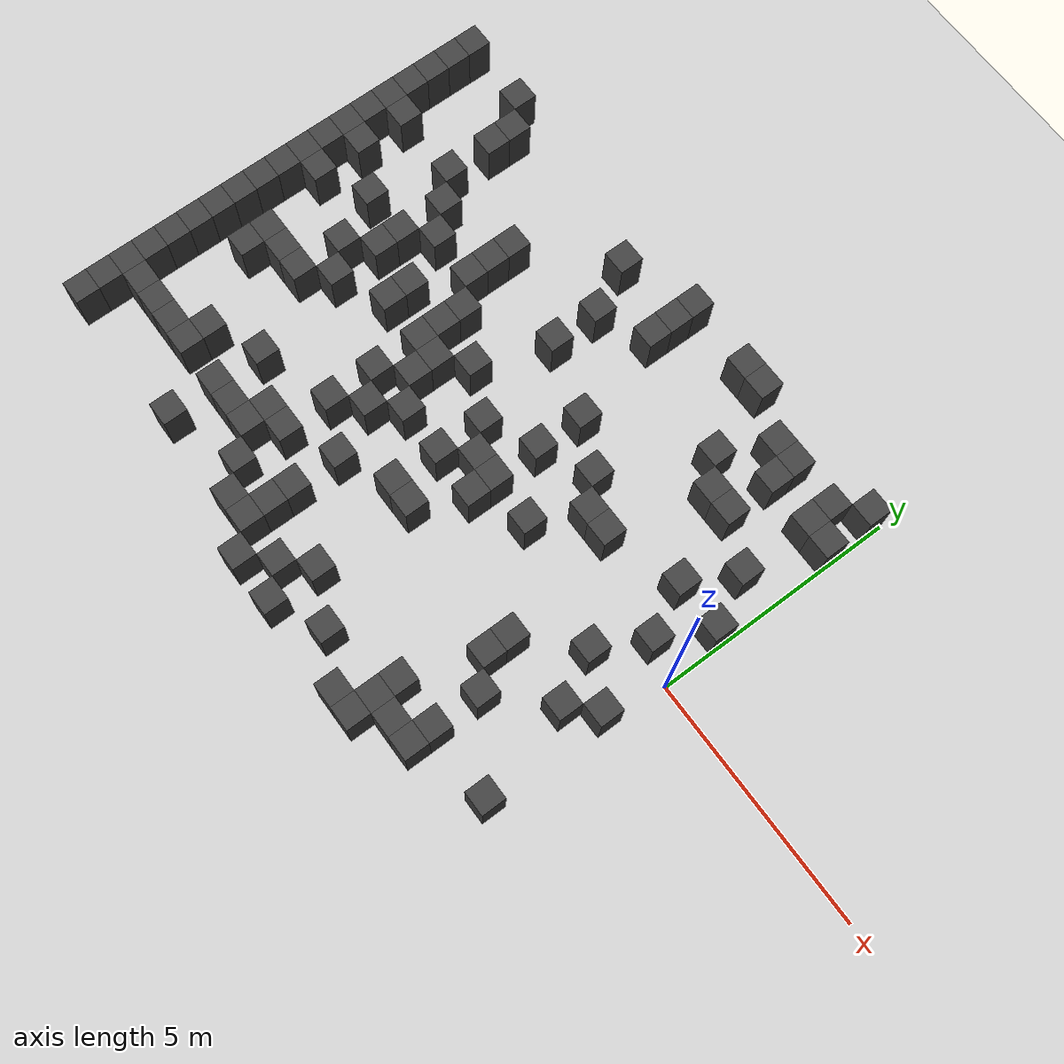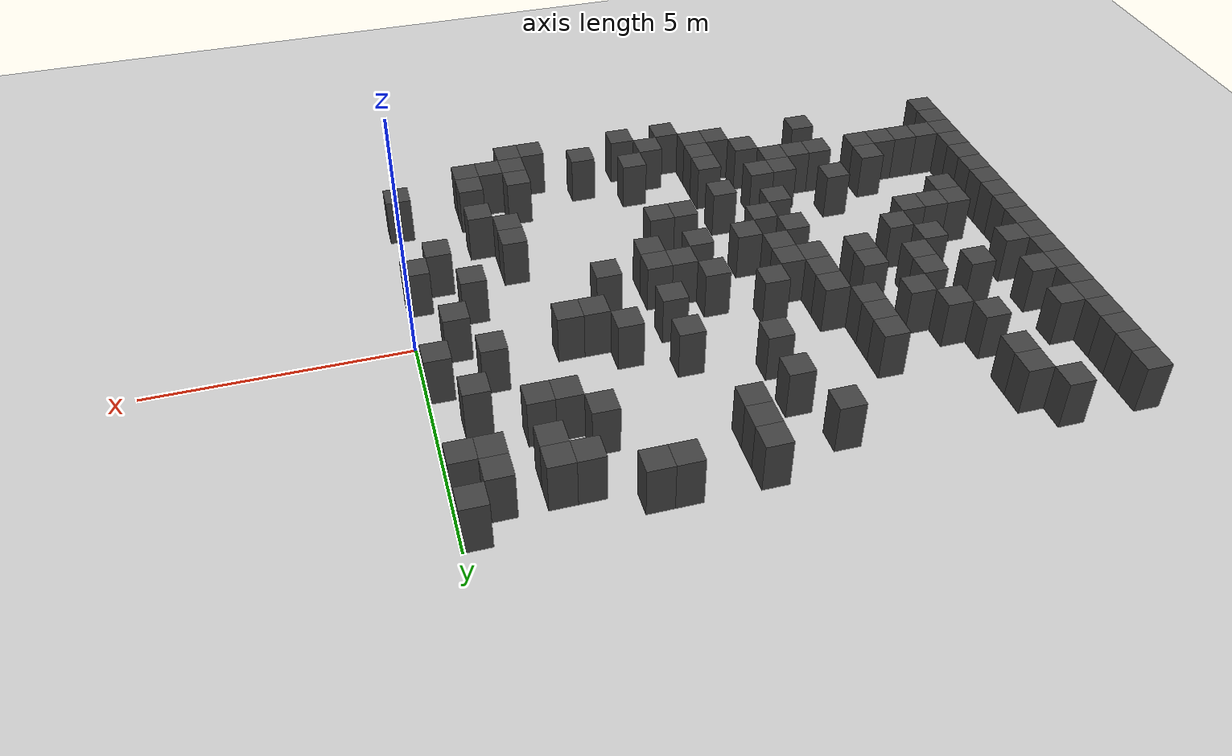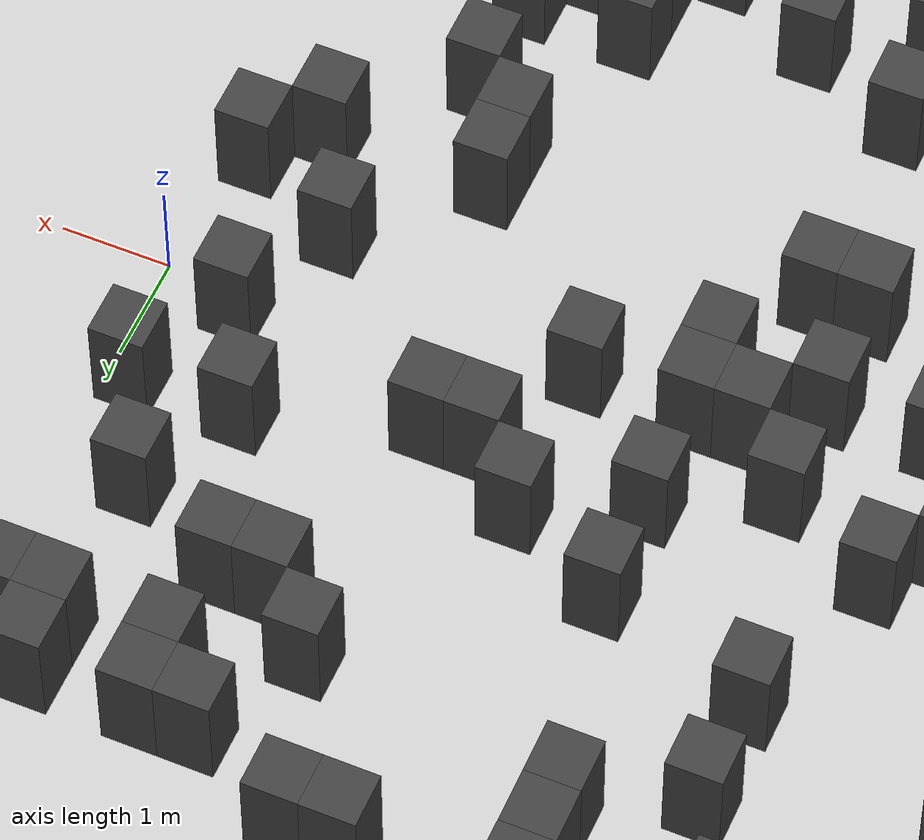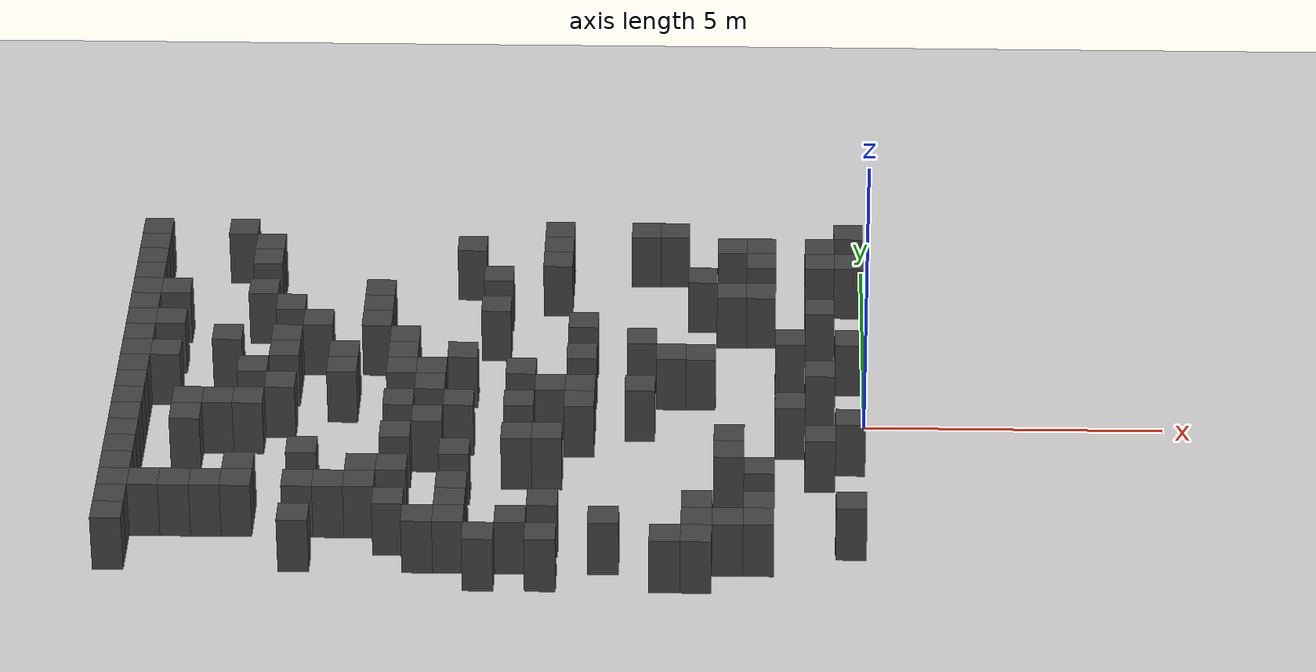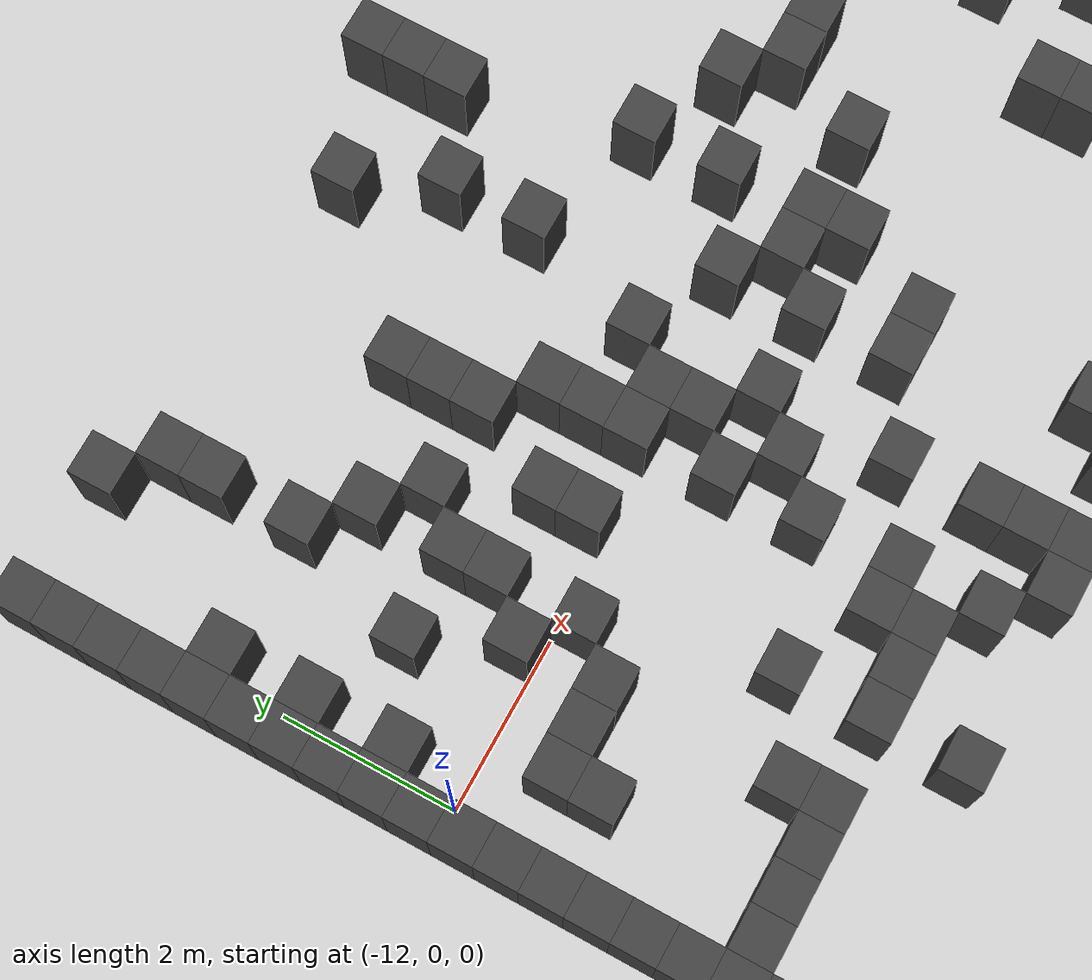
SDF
<sdf version="1.7">
 <world name="map_4951">
  <model name="ground_plane">
   <static>true</static>
   <link name="link">
    <collision name="collision">
     <geometry><plane><normal>0 0 1</normal><size>200 200</size></plane></geometry>
    </collision>
    <visual name="visual">
     <geometry><plane><normal>0 0 1</normal><size>200 200</size></plane></geometry>
     <material><ambient>0.8 0.8 0.8 1</ambient><diffuse>0.8 0.8 0.8 1</diffuse></material>
    </visual>
   </link>
  </model>
  <model name="maze_environment">
   <static>true</static>
   <link name="wall_233">
    <pose>-12.250 4.750 0.500 0 0 0</pose>
    <collision name="col"><geometry><box><size>0.5 0.5 1.0</size></box></geometry></collision>
    <visual name="vis">
     <geometry><box><size>0.5 0.5 1.0</size></box></geometry>
     <material><ambient>0.15 0.15 0.15 1</ambient><diffuse>0.25 0.25 0.25 1</diffuse></material>
    </visual>
   </link>
   <link name="wall_234">
    <pose>-10.750 4.750 0.500 0 0 0</pose>
    <collision name="col"><geometry><box><size>0.5 0.5 1.0</size></box></geometry></collision>
    <visual name="vis">
     <geometry><box><size>0.5 0.5 1.0</size></box></geometry>
     <material><ambient>0.15 0.15 0.15 1</ambient><diffuse>0.25 0.25 0.25 1</diffuse></material>
    </visual>
   </link>
   <link name="wall_235">
    <pose>-5.250 4.750 0.500 0 0 0</pose>
    <collision name="col"><geometry><box><size>0.5 0.5 1.0</size></box></geometry></collision>
    <visual name="vis">
     <geometry><box><size>0.5 0.5 1.0</size></box></geometry>
     <material><ambient>0.15 0.15 0.15 1</ambient><diffuse>0.25 0.25 0.25 1</diffuse></material>
    </visual>
   </link>
   <link name="wall_236">
    <pose>-3.750 4.750 0.500 0 0 0</pose>
    <collision name="col"><geometry><box><size>0.5 0.5 1.0</size></box></geometry></collision>
    <visual name="vis">
     <geometry><box><size>0.5 0.5 1.0</size></box></geometry>
     <material><ambient>0.15 0.15 0.15 1</ambient><diffuse>0.25 0.25 0.25 1</diffuse></material>
    </visual>
   </link>
   <link name="wall_237">
    <pose>-3.250 4.750 0.500 0 0 0</pose>
    <collision name="col"><geometry><box><size>0.5 0.5 1.0</size></box></geometry></collision>
    <visual name="vis">
     <geometry><box><size>0.5 0.5 1.0</size></box></geometry>
     <material><ambient>0.15 0.15 0.15 1</ambient><diffuse>0.25 0.25 0.25 1</diffuse></material>
    </visual>
   </link>
   <link name="wall_238">
    <pose>-0.250 4.750 0.500 0 0 0</pose>
    <collision name="col"><geometry><box><size>0.5 0.5 1.0</size></box></geometry></collision>
    <visual name="vis">
     <geometry><box><size>0.5 0.5 1.0</size></box></geometry>
     <material><ambient>0.15 0.15 0.15 1</ambient><diffuse>0.25 0.25 0.25 1</diffuse></material>
    </visual>
   </link>
   <link name="wall_241">
    <pose>-12.250 4.250 0.500 0 0 0</pose>
    <collision name="col"><geometry><box><size>0.5 0.5 1.0</size></box></geometry></collision>
    <visual name="vis">
     <geometry><box><size>0.5 0.5 1.0</size></box></geometry>
     <material><ambient>0.15 0.15 0.15 1</ambient><diffuse>0.25 0.25 0.25 1</diffuse></material>
    </visual>
   </link>
   <link name="wall_242">
    <pose>-10.250 4.250 0.500 0 0 0</pose>
    <collision name="col"><geometry><box><size>0.5 0.5 1.0</size></box></geometry></collision>
    <visual name="vis">
     <geometry><box><size>0.5 0.5 1.0</size></box></geometry>
     <material><ambient>0.15 0.15 0.15 1</ambient><diffuse>0.25 0.25 0.25 1</diffuse></material>
    </visual>
   </link>
   <link name="wall_243">
    <pose>-6.750 4.250 0.500 0 0 0</pose>
    <collision name="col"><geometry><box><size>0.5 0.5 1.0</size></box></geometry></collision>
    <visual name="vis">
     <geometry><box><size>0.5 0.5 1.0</size></box></geometry>
     <material><ambient>0.15 0.15 0.15 1</ambient><diffuse>0.25 0.25 0.25 1</diffuse></material>
    </visual>
   </link>
   <link name="wall_244">
    <pose>-5.250 4.250 0.500 0 0 0</pose>
    <collision name="col"><geometry><box><size>0.5 0.5 1.0</size></box></geometry></collision>
    <visual name="vis">
     <geometry><box><size>0.5 0.5 1.0</size></box></geometry>
     <material><ambient>0.15 0.15 0.15 1</ambient><diffuse>0.25 0.25 0.25 1</diffuse></material>
    </visual>
   </link>
   <link name="wall_245">
    <pose>-2.250 4.250 0.500 0 0 0</pose>
    <collision name="col"><geometry><box><size>0.5 0.5 1.0</size></box></geometry></collision>
    <visual name="vis">
     <geometry><box><size>0.5 0.5 1.0</size></box></geometry>
     <material><ambient>0.15 0.15 0.15 1</ambient><diffuse>0.25 0.25 0.25 1</diffuse></material>
    </visual>
   </link>
   <link name="wall_246">
    <pose>-1.750 4.250 0.500 0 0 0</pose>
    <collision name="col"><geometry><box><size>0.5 0.5 1.0</size></box></geometry></collision>
    <visual name="vis">
     <geometry><box><size>0.5 0.5 1.0</size></box></geometry>
     <material><ambient>0.15 0.15 0.15 1</ambient><diffuse>0.25 0.25 0.25 1</diffuse></material>
    </visual>
   </link>
   <link name="wall_247">
    <pose>-0.750 4.250 0.500 0 0 0</pose>
    <collision name="col"><geometry><box><size>0.5 0.5 1.0</size></box></geometry></collision>
    <visual name="vis">
     <geometry><box><size>0.5 0.5 1.0</size></box></geometry>
     <material><ambient>0.15 0.15 0.15 1</ambient><diffuse>0.25 0.25 0.25 1</diffuse></material>
    </visual>
   </link>
   <link name="wall_255">
    <pose>-12.250 3.750 0.500 0 0 0</pose>
    <collision name="col"><geometry><box><size>0.5 0.5 1.0</size></box></geometry></collision>
    <visual name="vis">
     <geometry><box><size>0.5 0.5 1.0</size></box></geometry>
     <material><ambient>0.15 0.15 0.15 1</ambient><diffuse>0.25 0.25 0.25 1</diffuse></material>
    </visual>
   </link>
   <link name="wall_256">
    <pose>-10.250 3.750 0.500 0 0 0</pose>
    <collision name="col"><geometry><box><size>0.5 0.5 1.0</size></box></geometry></collision>
    <visual name="vis">
     <geometry><box><size>0.5 0.5 1.0</size></box></geometry>
     <material><ambient>0.15 0.15 0.15 1</ambient><diffuse>0.25 0.25 0.25 1</diffuse></material>
    </visual>
   </link>
   <link name="wall_257">
    <pose>-5.250 3.750 0.500 0 0 0</pose>
    <collision name="col"><geometry><box><size>0.5 0.5 1.0</size></box></geometry></collision>
    <visual name="vis">
     <geometry><box><size>0.5 0.5 1.0</size></box></geometry>
     <material><ambient>0.15 0.15 0.15 1</ambient><diffuse>0.25 0.25 0.25 1</diffuse></material>
    </visual>
   </link>
   <link name="wall_258">
    <pose>-1.750 3.750 0.500 0 0 0</pose>
    <collision name="col"><geometry><box><size>0.5 0.5 1.0</size></box></geometry></collision>
    <visual name="vis">
     <geometry><box><size>0.5 0.5 1.0</size></box></geometry>
     <material><ambient>0.15 0.15 0.15 1</ambient><diffuse>0.25 0.25 0.25 1</diffuse></material>
    </visual>
   </link>
   <link name="wall_259">
    <pose>-0.750 3.750 0.500 0 0 0</pose>
    <collision name="col"><geometry><box><size>0.5 0.5 1.0</size></box></geometry></collision>
    <visual name="vis">
     <geometry><box><size>0.5 0.5 1.0</size></box></geometry>
     <material><ambient>0.15 0.15 0.15 1</ambient><diffuse>0.25 0.25 0.25 1</diffuse></material>
    </visual>
   </link>
   <link name="wall_260">
    <pose>-0.250 3.750 0.500 0 0 0</pose>
    <collision name="col"><geometry><box><size>0.5 0.5 1.0</size></box></geometry></collision>
    <visual name="vis">
     <geometry><box><size>0.5 0.5 1.0</size></box></geometry>
     <material><ambient>0.15 0.15 0.15 1</ambient><diffuse>0.25 0.25 0.25 1</diffuse></material>
    </visual>
   </link>
   <link name="wall_272">
    <pose>-12.250 3.250 0.500 0 0 0</pose>
    <collision name="col"><geometry><box><size>0.5 0.5 1.0</size></box></geometry></collision>
    <visual name="vis">
     <geometry><box><size>0.5 0.5 1.0</size></box></geometry>
     <material><ambient>0.15 0.15 0.15 1</ambient><diffuse>0.25 0.25 0.25 1</diffuse></material>
    </visual>
   </link>
   <link name="wall_273">
    <pose>-6.250 3.250 0.500 0 0 0</pose>
    <collision name="col"><geometry><box><size>0.5 0.5 1.0</size></box></geometry></collision>
    <visual name="vis">
     <geometry><box><size>0.5 0.5 1.0</size></box></geometry>
     <material><ambient>0.15 0.15 0.15 1</ambient><diffuse>0.25 0.25 0.25 1</diffuse></material>
    </visual>
   </link>
   <link name="wall_274">
    <pose>-2.750 3.250 0.500 0 0 0</pose>
    <collision name="col"><geometry><box><size>0.5 0.5 1.0</size></box></geometry></collision>
    <visual name="vis">
     <geometry><box><size>0.5 0.5 1.0</size></box></geometry>
     <material><ambient>0.15 0.15 0.15 1</ambient><diffuse>0.25 0.25 0.25 1</diffuse></material>
    </visual>
   </link>
   <link name="wall_281">
    <pose>-12.250 2.750 0.500 0 0 0</pose>
    <collision name="col"><geometry><box><size>0.5 0.5 1.0</size></box></geometry></collision>
    <visual name="vis">
     <geometry><box><size>0.5 0.5 1.0</size></box></geometry>
     <material><ambient>0.15 0.15 0.15 1</ambient><diffuse>0.25 0.25 0.25 1</diffuse></material>
    </visual>
   </link>
   <link name="wall_282">
    <pose>-11.750 2.750 0.500 0 0 0</pose>
    <collision name="col"><geometry><box><size>0.5 0.5 1.0</size></box></geometry></collision>
    <visual name="vis">
     <geometry><box><size>0.5 0.5 1.0</size></box></geometry>
     <material><ambient>0.15 0.15 0.15 1</ambient><diffuse>0.25 0.25 0.25 1</diffuse></material>
    </visual>
   </link>
   <link name="wall_283">
    <pose>-10.250 2.750 0.500 0 0 0</pose>
    <collision name="col"><geometry><box><size>0.5 0.5 1.0</size></box></geometry></collision>
    <visual name="vis">
     <geometry><box><size>0.5 0.5 1.0</size></box></geometry>
     <material><ambient>0.15 0.15 0.15 1</ambient><diffuse>0.25 0.25 0.25 1</diffuse></material>
    </visual>
   </link>
   <link name="wall_284">
    <pose>-8.250 2.750 0.500 0 0 0</pose>
    <collision name="col"><geometry><box><size>0.5 0.5 1.0</size></box></geometry></collision>
    <visual name="vis">
     <geometry><box><size>0.5 0.5 1.0</size></box></geometry>
     <material><ambient>0.15 0.15 0.15 1</ambient><diffuse>0.25 0.25 0.25 1</diffuse></material>
    </visual>
   </link>
   <link name="wall_285">
    <pose>-2.250 2.750 0.500 0 0 0</pose>
    <collision name="col"><geometry><box><size>0.5 0.5 1.0</size></box></geometry></collision>
    <visual name="vis">
     <geometry><box><size>0.5 0.5 1.0</size></box></geometry>
     <material><ambient>0.15 0.15 0.15 1</ambient><diffuse>0.25 0.25 0.25 1</diffuse></material>
    </visual>
   </link>
   <link name="wall_286">
    <pose>-1.750 2.750 0.500 0 0 0</pose>
    <collision name="col"><geometry><box><size>0.5 0.5 1.0</size></box></geometry></collision>
    <visual name="vis">
     <geometry><box><size>0.5 0.5 1.0</size></box></geometry>
     <material><ambient>0.15 0.15 0.15 1</ambient><diffuse>0.25 0.25 0.25 1</diffuse></material>
    </visual>
   </link>
   <link name="wall_295">
    <pose>-12.250 2.250 0.500 0 0 0</pose>
    <collision name="col"><geometry><box><size>0.5 0.5 1.0</size></box></geometry></collision>
    <visual name="vis">
     <geometry><box><size>0.5 0.5 1.0</size></box></geometry>
     <material><ambient>0.15 0.15 0.15 1</ambient><diffuse>0.25 0.25 0.25 1</diffuse></material>
    </visual>
   </link>
   <link name="wall_296">
    <pose>-9.750 2.250 0.500 0 0 0</pose>
    <collision name="col"><geometry><box><size>0.5 0.5 1.0</size></box></geometry></collision>
    <visual name="vis">
     <geometry><box><size>0.5 0.5 1.0</size></box></geometry>
     <material><ambient>0.15 0.15 0.15 1</ambient><diffuse>0.25 0.25 0.25 1</diffuse></material>
    </visual>
   </link>
   <link name="wall_297">
    <pose>-8.250 2.250 0.500 0 0 0</pose>
    <collision name="col"><geometry><box><size>0.5 0.5 1.0</size></box></geometry></collision>
    <visual name="vis">
     <geometry><box><size>0.5 0.5 1.0</size></box></geometry>
     <material><ambient>0.15 0.15 0.15 1</ambient><diffuse>0.25 0.25 0.25 1</diffuse></material>
    </visual>
   </link>
   <link name="wall_298">
    <pose>-6.250 2.250 0.500 0 0 0</pose>
    <collision name="col"><geometry><box><size>0.5 0.5 1.0</size></box></geometry></collision>
    <visual name="vis">
     <geometry><box><size>0.5 0.5 1.0</size></box></geometry>
     <material><ambient>0.15 0.15 0.15 1</ambient><diffuse>0.25 0.25 0.25 1</diffuse></material>
    </visual>
   </link>
   <link name="wall_299">
    <pose>-0.750 2.250 0.500 0 0 0</pose>
    <collision name="col"><geometry><box><size>0.5 0.5 1.0</size></box></geometry></collision>
    <visual name="vis">
     <geometry><box><size>0.5 0.5 1.0</size></box></geometry>
     <material><ambient>0.15 0.15 0.15 1</ambient><diffuse>0.25 0.25 0.25 1</diffuse></material>
    </visual>
   </link>
   <link name="wall_307">
    <pose>-12.250 1.750 0.500 0 0 0</pose>
    <collision name="col"><geometry><box><size>0.5 0.5 1.0</size></box></geometry></collision>
    <visual name="vis">
     <geometry><box><size>0.5 0.5 1.0</size></box></geometry>
     <material><ambient>0.15 0.15 0.15 1</ambient><diffuse>0.25 0.25 0.25 1</diffuse></material>
    </visual>
   </link>
   <link name="wall_308">
    <pose>-11.750 1.750 0.500 0 0 0</pose>
    <collision name="col"><geometry><box><size>0.5 0.5 1.0</size></box></geometry></collision>
    <visual name="vis">
     <geometry><box><size>0.5 0.5 1.0</size></box></geometry>
     <material><ambient>0.15 0.15 0.15 1</ambient><diffuse>0.25 0.25 0.25 1</diffuse></material>
    </visual>
   </link>
   <link name="wall_309">
    <pose>-9.250 1.750 0.500 0 0 0</pose>
    <collision name="col"><geometry><box><size>0.5 0.5 1.0</size></box></geometry></collision>
    <visual name="vis">
     <geometry><box><size>0.5 0.5 1.0</size></box></geometry>
     <material><ambient>0.15 0.15 0.15 1</ambient><diffuse>0.25 0.25 0.25 1</diffuse></material>
    </visual>
   </link>
   <link name="wall_310">
    <pose>-8.250 1.750 0.500 0 0 0</pose>
    <collision name="col"><geometry><box><size>0.5 0.5 1.0</size></box></geometry></collision>
    <visual name="vis">
     <geometry><box><size>0.5 0.5 1.0</size></box></geometry>
     <material><ambient>0.15 0.15 0.15 1</ambient><diffuse>0.25 0.25 0.25 1</diffuse></material>
    </visual>
   </link>
   <link name="wall_311">
    <pose>-4.750 1.750 0.500 0 0 0</pose>
    <collision name="col"><geometry><box><size>0.5 0.5 1.0</size></box></geometry></collision>
    <visual name="vis">
     <geometry><box><size>0.5 0.5 1.0</size></box></geometry>
     <material><ambient>0.15 0.15 0.15 1</ambient><diffuse>0.25 0.25 0.25 1</diffuse></material>
    </visual>
   </link>
   <link name="wall_319">
    <pose>-12.250 1.250 0.500 0 0 0</pose>
    <collision name="col"><geometry><box><size>0.5 0.5 1.0</size></box></geometry></collision>
    <visual name="vis">
     <geometry><box><size>0.5 0.5 1.0</size></box></geometry>
     <material><ambient>0.15 0.15 0.15 1</ambient><diffuse>0.25 0.25 0.25 1</diffuse></material>
    </visual>
   </link>
   <link name="wall_320">
    <pose>-10.750 1.250 0.500 0 0 0</pose>
    <collision name="col"><geometry><box><size>0.5 0.5 1.0</size></box></geometry></collision>
    <visual name="vis">
     <geometry><box><size>0.5 0.5 1.0</size></box></geometry>
     <material><ambient>0.15 0.15 0.15 1</ambient><diffuse>0.25 0.25 0.25 1</diffuse></material>
    </visual>
   </link>
   <link name="wall_321">
    <pose>-9.750 1.250 0.500 0 0 0</pose>
    <collision name="col"><geometry><box><size>0.5 0.5 1.0</size></box></geometry></collision>
    <visual name="vis">
     <geometry><box><size>0.5 0.5 1.0</size></box></geometry>
     <material><ambient>0.15 0.15 0.15 1</ambient><diffuse>0.25 0.25 0.25 1</diffuse></material>
    </visual>
   </link>
   <link name="wall_322">
    <pose>-7.750 1.250 0.500 0 0 0</pose>
    <collision name="col"><geometry><box><size>0.5 0.5 1.0</size></box></geometry></collision>
    <visual name="vis">
     <geometry><box><size>0.5 0.5 1.0</size></box></geometry>
     <material><ambient>0.15 0.15 0.15 1</ambient><diffuse>0.25 0.25 0.25 1</diffuse></material>
    </visual>
   </link>
   <link name="wall_323">
    <pose>-3.750 1.250 0.500 0 0 0</pose>
    <collision name="col"><geometry><box><size>0.5 0.5 1.0</size></box></geometry></collision>
    <visual name="vis">
     <geometry><box><size>0.5 0.5 1.0</size></box></geometry>
     <material><ambient>0.15 0.15 0.15 1</ambient><diffuse>0.25 0.25 0.25 1</diffuse></material>
    </visual>
   </link>
   <link name="wall_324">
    <pose>-1.250 1.250 0.500 0 0 0</pose>
    <collision name="col"><geometry><box><size>0.5 0.5 1.0</size></box></geometry></collision>
    <visual name="vis">
     <geometry><box><size>0.5 0.5 1.0</size></box></geometry>
     <material><ambient>0.15 0.15 0.15 1</ambient><diffuse>0.25 0.25 0.25 1</diffuse></material>
    </visual>
   </link>
   <link name="wall_325">
    <pose>-0.250 1.250 0.500 0 0 0</pose>
    <collision name="col"><geometry><box><size>0.5 0.5 1.0</size></box></geometry></collision>
    <visual name="vis">
     <geometry><box><size>0.5 0.5 1.0</size></box></geometry>
     <material><ambient>0.15 0.15 0.15 1</ambient><diffuse>0.25 0.25 0.25 1</diffuse></material>
    </visual>
   </link>
   <link name="wall_334">
    <pose>-12.250 0.750 0.500 0 0 0</pose>
    <collision name="col"><geometry><box><size>0.5 0.5 1.0</size></box></geometry></collision>
    <visual name="vis">
     <geometry><box><size>0.5 0.5 1.0</size></box></geometry>
     <material><ambient>0.15 0.15 0.15 1</ambient><diffuse>0.25 0.25 0.25 1</diffuse></material>
    </visual>
   </link>
   <link name="wall_335">
    <pose>-11.750 0.750 0.500 0 0 0</pose>
    <collision name="col"><geometry><box><size>0.5 0.5 1.0</size></box></geometry></collision>
    <visual name="vis">
     <geometry><box><size>0.5 0.5 1.0</size></box></geometry>
     <material><ambient>0.15 0.15 0.15 1</ambient><diffuse>0.25 0.25 0.25 1</diffuse></material>
    </visual>
   </link>
   <link name="wall_336">
    <pose>-9.750 0.750 0.500 0 0 0</pose>
    <collision name="col"><geometry><box><size>0.5 0.5 1.0</size></box></geometry></collision>
    <visual name="vis">
     <geometry><box><size>0.5 0.5 1.0</size></box></geometry>
     <material><ambient>0.15 0.15 0.15 1</ambient><diffuse>0.25 0.25 0.25 1</diffuse></material>
    </visual>
   </link>
   <link name="wall_337">
    <pose>-8.750 0.750 0.500 0 0 0</pose>
    <collision name="col"><geometry><box><size>0.5 0.5 1.0</size></box></geometry></collision>
    <visual name="vis">
     <geometry><box><size>0.5 0.5 1.0</size></box></geometry>
     <material><ambient>0.15 0.15 0.15 1</ambient><diffuse>0.25 0.25 0.25 1</diffuse></material>
    </visual>
   </link>
   <link name="wall_338">
    <pose>-7.750 0.750 0.500 0 0 0</pose>
    <collision name="col"><geometry><box><size>0.5 0.5 1.0</size></box></geometry></collision>
    <visual name="vis">
     <geometry><box><size>0.5 0.5 1.0</size></box></geometry>
     <material><ambient>0.15 0.15 0.15 1</ambient><diffuse>0.25 0.25 0.25 1</diffuse></material>
    </visual>
   </link>
   <link name="wall_339">
    <pose>-6.750 0.750 0.500 0 0 0</pose>
    <collision name="col"><geometry><box><size>0.5 0.5 1.0</size></box></geometry></collision>
    <visual name="vis">
     <geometry><box><size>0.5 0.5 1.0</size></box></geometry>
     <material><ambient>0.15 0.15 0.15 1</ambient><diffuse>0.25 0.25 0.25 1</diffuse></material>
    </visual>
   </link>
   <link name="wall_340">
    <pose>-4.750 0.750 0.500 0 0 0</pose>
    <collision name="col"><geometry><box><size>0.5 0.5 1.0</size></box></geometry></collision>
    <visual name="vis">
     <geometry><box><size>0.5 0.5 1.0</size></box></geometry>
     <material><ambient>0.15 0.15 0.15 1</ambient><diffuse>0.25 0.25 0.25 1</diffuse></material>
    </visual>
   </link>
   <link name="wall_341">
    <pose>-3.250 0.750 0.500 0 0 0</pose>
    <collision name="col"><geometry><box><size>0.5 0.5 1.0</size></box></geometry></collision>
    <visual name="vis">
     <geometry><box><size>0.5 0.5 1.0</size></box></geometry>
     <material><ambient>0.15 0.15 0.15 1</ambient><diffuse>0.25 0.25 0.25 1</diffuse></material>
    </visual>
   </link>
   <link name="wall_342">
    <pose>-2.750 0.750 0.500 0 0 0</pose>
    <collision name="col"><geometry><box><size>0.5 0.5 1.0</size></box></geometry></collision>
    <visual name="vis">
     <geometry><box><size>0.5 0.5 1.0</size></box></geometry>
     <material><ambient>0.15 0.15 0.15 1</ambient><diffuse>0.25 0.25 0.25 1</diffuse></material>
    </visual>
   </link>
   <link name="wall_353">
    <pose>-12.250 0.250 0.500 0 0 0</pose>
    <collision name="col"><geometry><box><size>0.5 0.5 1.0</size></box></geometry></collision>
    <visual name="vis">
     <geometry><box><size>0.5 0.5 1.0</size></box></geometry>
     <material><ambient>0.15 0.15 0.15 1</ambient><diffuse>0.25 0.25 0.25 1</diffuse></material>
    </visual>
   </link>
   <link name="wall_354">
    <pose>-10.250 0.250 0.500 0 0 0</pose>
    <collision name="col"><geometry><box><size>0.5 0.5 1.0</size></box></geometry></collision>
    <visual name="vis">
     <geometry><box><size>0.5 0.5 1.0</size></box></geometry>
     <material><ambient>0.15 0.15 0.15 1</ambient><diffuse>0.25 0.25 0.25 1</diffuse></material>
    </visual>
   </link>
   <link name="wall_355">
    <pose>-8.750 0.250 0.500 0 0 0</pose>
    <collision name="col"><geometry><box><size>0.5 0.5 1.0</size></box></geometry></collision>
    <visual name="vis">
     <geometry><box><size>0.5 0.5 1.0</size></box></geometry>
     <material><ambient>0.15 0.15 0.15 1</ambient><diffuse>0.25 0.25 0.25 1</diffuse></material>
    </visual>
   </link>
   <link name="wall_356">
    <pose>-7.750 0.250 0.500 0 0 0</pose>
    <collision name="col"><geometry><box><size>0.5 0.5 1.0</size></box></geometry></collision>
    <visual name="vis">
     <geometry><box><size>0.5 0.5 1.0</size></box></geometry>
     <material><ambient>0.15 0.15 0.15 1</ambient><diffuse>0.25 0.25 0.25 1</diffuse></material>
    </visual>
   </link>
   <link name="wall_357">
    <pose>-7.250 0.250 0.500 0 0 0</pose>
    <collision name="col"><geometry><box><size>0.5 0.5 1.0</size></box></geometry></collision>
    <visual name="vis">
     <geometry><box><size>0.5 0.5 1.0</size></box></geometry>
     <material><ambient>0.15 0.15 0.15 1</ambient><diffuse>0.25 0.25 0.25 1</diffuse></material>
    </visual>
   </link>
   <link name="wall_358">
    <pose>-5.750 0.250 0.500 0 0 0</pose>
    <collision name="col"><geometry><box><size>0.5 0.5 1.0</size></box></geometry></collision>
    <visual name="vis">
     <geometry><box><size>0.5 0.5 1.0</size></box></geometry>
     <material><ambient>0.15 0.15 0.15 1</ambient><diffuse>0.25 0.25 0.25 1</diffuse></material>
    </visual>
   </link>
   <link name="wall_359">
    <pose>-0.750 0.250 0.500 0 0 0</pose>
    <collision name="col"><geometry><box><size>0.5 0.5 1.0</size></box></geometry></collision>
    <visual name="vis">
     <geometry><box><size>0.5 0.5 1.0</size></box></geometry>
     <material><ambient>0.15 0.15 0.15 1</ambient><diffuse>0.25 0.25 0.25 1</diffuse></material>
    </visual>
   </link>
   <link name="wall_364">
    <pose>-12.250 -0.250 0.500 0 0 0</pose>
    <collision name="col"><geometry><box><size>0.5 0.5 1.0</size></box></geometry></collision>
    <visual name="vis">
     <geometry><box><size>0.5 0.5 1.0</size></box></geometry>
     <material><ambient>0.15 0.15 0.15 1</ambient><diffuse>0.25 0.25 0.25 1</diffuse></material>
    </visual>
   </link>
   <link name="wall_365">
    <pose>-9.750 -0.250 0.500 0 0 0</pose>
    <collision name="col"><geometry><box><size>0.5 0.5 1.0</size></box></geometry></collision>
    <visual name="vis">
     <geometry><box><size>0.5 0.5 1.0</size></box></geometry>
     <material><ambient>0.15 0.15 0.15 1</ambient><diffuse>0.25 0.25 0.25 1</diffuse></material>
    </visual>
   </link>
   <link name="wall_366">
    <pose>-7.250 -0.250 0.500 0 0 0</pose>
    <collision name="col"><geometry><box><size>0.5 0.5 1.0</size></box></geometry></collision>
    <visual name="vis">
     <geometry><box><size>0.5 0.5 1.0</size></box></geometry>
     <material><ambient>0.15 0.15 0.15 1</ambient><diffuse>0.25 0.25 0.25 1</diffuse></material>
    </visual>
   </link>
   <link name="wall_367">
    <pose>-5.250 -0.250 0.500 0 0 0</pose>
    <collision name="col"><geometry><box><size>0.5 0.5 1.0</size></box></geometry></collision>
    <visual name="vis">
     <geometry><box><size>0.5 0.5 1.0</size></box></geometry>
     <material><ambient>0.15 0.15 0.15 1</ambient><diffuse>0.25 0.25 0.25 1</diffuse></material>
    </visual>
   </link>
   <link name="wall_368">
    <pose>-4.750 -0.250 0.500 0 0 0</pose>
    <collision name="col"><geometry><box><size>0.5 0.5 1.0</size></box></geometry></collision>
    <visual name="vis">
     <geometry><box><size>0.5 0.5 1.0</size></box></geometry>
     <material><ambient>0.15 0.15 0.15 1</ambient><diffuse>0.25 0.25 0.25 1</diffuse></material>
    </visual>
   </link>
   <link name="wall_369">
    <pose>-3.750 -0.250 0.500 0 0 0</pose>
    <collision name="col"><geometry><box><size>0.5 0.5 1.0</size></box></geometry></collision>
    <visual name="vis">
     <geometry><box><size>0.5 0.5 1.0</size></box></geometry>
     <material><ambient>0.15 0.15 0.15 1</ambient><diffuse>0.25 0.25 0.25 1</diffuse></material>
    </visual>
   </link>
   <link name="wall_375">
    <pose>-12.250 -0.750 0.500 0 0 0</pose>
    <collision name="col"><geometry><box><size>0.5 0.5 1.0</size></box></geometry></collision>
    <visual name="vis">
     <geometry><box><size>0.5 0.5 1.0</size></box></geometry>
     <material><ambient>0.15 0.15 0.15 1</ambient><diffuse>0.25 0.25 0.25 1</diffuse></material>
    </visual>
   </link>
   <link name="wall_376">
    <pose>-11.250 -0.750 0.500 0 0 0</pose>
    <collision name="col"><geometry><box><size>0.5 0.5 1.0</size></box></geometry></collision>
    <visual name="vis">
     <geometry><box><size>0.5 0.5 1.0</size></box></geometry>
     <material><ambient>0.15 0.15 0.15 1</ambient><diffuse>0.25 0.25 0.25 1</diffuse></material>
    </visual>
   </link>
   <link name="wall_377">
    <pose>-10.750 -0.750 0.500 0 0 0</pose>
    <collision name="col"><geometry><box><size>0.5 0.5 1.0</size></box></geometry></collision>
    <visual name="vis">
     <geometry><box><size>0.5 0.5 1.0</size></box></geometry>
     <material><ambient>0.15 0.15 0.15 1</ambient><diffuse>0.25 0.25 0.25 1</diffuse></material>
    </visual>
   </link>
   <link name="wall_378">
    <pose>-10.250 -0.750 0.500 0 0 0</pose>
    <collision name="col"><geometry><box><size>0.5 0.5 1.0</size></box></geometry></collision>
    <visual name="vis">
     <geometry><box><size>0.5 0.5 1.0</size></box></geometry>
     <material><ambient>0.15 0.15 0.15 1</ambient><diffuse>0.25 0.25 0.25 1</diffuse></material>
    </visual>
   </link>
   <link name="wall_379">
    <pose>-7.750 -0.750 0.500 0 0 0</pose>
    <collision name="col"><geometry><box><size>0.5 0.5 1.0</size></box></geometry></collision>
    <visual name="vis">
     <geometry><box><size>0.5 0.5 1.0</size></box></geometry>
     <material><ambient>0.15 0.15 0.15 1</ambient><diffuse>0.25 0.25 0.25 1</diffuse></material>
    </visual>
   </link>
   <link name="wall_380">
    <pose>-6.750 -0.750 0.500 0 0 0</pose>
    <collision name="col"><geometry><box><size>0.5 0.5 1.0</size></box></geometry></collision>
    <visual name="vis">
     <geometry><box><size>0.5 0.5 1.0</size></box></geometry>
     <material><ambient>0.15 0.15 0.15 1</ambient><diffuse>0.25 0.25 0.25 1</diffuse></material>
    </visual>
   </link>
   <link name="wall_381">
    <pose>-5.750 -0.750 0.500 0 0 0</pose>
    <collision name="col"><geometry><box><size>0.5 0.5 1.0</size></box></geometry></collision>
    <visual name="vis">
     <geometry><box><size>0.5 0.5 1.0</size></box></geometry>
     <material><ambient>0.15 0.15 0.15 1</ambient><diffuse>0.25 0.25 0.25 1</diffuse></material>
    </visual>
   </link>
   <link name="wall_382">
    <pose>-4.750 -0.750 0.500 0 0 0</pose>
    <collision name="col"><geometry><box><size>0.5 0.5 1.0</size></box></geometry></collision>
    <visual name="vis">
     <geometry><box><size>0.5 0.5 1.0</size></box></geometry>
     <material><ambient>0.15 0.15 0.15 1</ambient><diffuse>0.25 0.25 0.25 1</diffuse></material>
    </visual>
   </link>
   <link name="wall_383">
    <pose>-1.250 -0.750 0.500 0 0 0</pose>
    <collision name="col"><geometry><box><size>0.5 0.5 1.0</size></box></geometry></collision>
    <visual name="vis">
     <geometry><box><size>0.5 0.5 1.0</size></box></geometry>
     <material><ambient>0.15 0.15 0.15 1</ambient><diffuse>0.25 0.25 0.25 1</diffuse></material>
    </visual>
   </link>
   <link name="wall_395">
    <pose>-12.250 -1.250 0.500 0 0 0</pose>
    <collision name="col"><geometry><box><size>0.5 0.5 1.0</size></box></geometry></collision>
    <visual name="vis">
     <geometry><box><size>0.5 0.5 1.0</size></box></geometry>
     <material><ambient>0.15 0.15 0.15 1</ambient><diffuse>0.25 0.25 0.25 1</diffuse></material>
    </visual>
   </link>
   <link name="wall_396">
    <pose>-11.250 -1.250 0.500 0 0 0</pose>
    <collision name="col"><geometry><box><size>0.5 0.5 1.0</size></box></geometry></collision>
    <visual name="vis">
     <geometry><box><size>0.5 0.5 1.0</size></box></geometry>
     <material><ambient>0.15 0.15 0.15 1</ambient><diffuse>0.25 0.25 0.25 1</diffuse></material>
    </visual>
   </link>
   <link name="wall_397">
    <pose>-7.250 -1.250 0.500 0 0 0</pose>
    <collision name="col"><geometry><box><size>0.5 0.5 1.0</size></box></geometry></collision>
    <visual name="vis">
     <geometry><box><size>0.5 0.5 1.0</size></box></geometry>
     <material><ambient>0.15 0.15 0.15 1</ambient><diffuse>0.25 0.25 0.25 1</diffuse></material>
    </visual>
   </link>
   <link name="wall_398">
    <pose>-0.250 -1.250 0.500 0 0 0</pose>
    <collision name="col"><geometry><box><size>0.5 0.5 1.0</size></box></geometry></collision>
    <visual name="vis">
     <geometry><box><size>0.5 0.5 1.0</size></box></geometry>
     <material><ambient>0.15 0.15 0.15 1</ambient><diffuse>0.25 0.25 0.25 1</diffuse></material>
    </visual>
   </link>
   <link name="wall_408">
    <pose>-12.250 -1.750 0.500 0 0 0</pose>
    <collision name="col"><geometry><box><size>0.5 0.5 1.0</size></box></geometry></collision>
    <visual name="vis">
     <geometry><box><size>0.5 0.5 1.0</size></box></geometry>
     <material><ambient>0.15 0.15 0.15 1</ambient><diffuse>0.25 0.25 0.25 1</diffuse></material>
    </visual>
   </link>
   <link name="wall_409">
    <pose>-7.750 -1.750 0.500 0 0 0</pose>
    <collision name="col"><geometry><box><size>0.5 0.5 1.0</size></box></geometry></collision>
    <visual name="vis">
     <geometry><box><size>0.5 0.5 1.0</size></box></geometry>
     <material><ambient>0.15 0.15 0.15 1</ambient><diffuse>0.25 0.25 0.25 1</diffuse></material>
    </visual>
   </link>
   <link name="wall_410">
    <pose>-5.750 -1.750 0.500 0 0 0</pose>
    <collision name="col"><geometry><box><size>0.5 0.5 1.0</size></box></geometry></collision>
    <visual name="vis">
     <geometry><box><size>0.5 0.5 1.0</size></box></geometry>
     <material><ambient>0.15 0.15 0.15 1</ambient><diffuse>0.25 0.25 0.25 1</diffuse></material>
    </visual>
   </link>
   <link name="wall_411">
    <pose>-5.250 -1.750 0.500 0 0 0</pose>
    <collision name="col"><geometry><box><size>0.5 0.5 1.0</size></box></geometry></collision>
    <visual name="vis">
     <geometry><box><size>0.5 0.5 1.0</size></box></geometry>
     <material><ambient>0.15 0.15 0.15 1</ambient><diffuse>0.25 0.25 0.25 1</diffuse></material>
    </visual>
   </link>
   <link name="wall_412">
    <pose>-2.250 -1.750 0.500 0 0 0</pose>
    <collision name="col"><geometry><box><size>0.5 0.5 1.0</size></box></geometry></collision>
    <visual name="vis">
     <geometry><box><size>0.5 0.5 1.0</size></box></geometry>
     <material><ambient>0.15 0.15 0.15 1</ambient><diffuse>0.25 0.25 0.25 1</diffuse></material>
    </visual>
   </link>
   <link name="wall_413">
    <pose>-0.750 -1.750 0.500 0 0 0</pose>
    <collision name="col"><geometry><box><size>0.5 0.5 1.0</size></box></geometry></collision>
    <visual name="vis">
     <geometry><box><size>0.5 0.5 1.0</size></box></geometry>
     <material><ambient>0.15 0.15 0.15 1</ambient><diffuse>0.25 0.25 0.25 1</diffuse></material>
    </visual>
   </link>
   <link name="wall_421">
    <pose>-12.250 -2.250 0.500 0 0 0</pose>
    <collision name="col"><geometry><box><size>0.5 0.5 1.0</size></box></geometry></collision>
    <visual name="vis">
     <geometry><box><size>0.5 0.5 1.0</size></box></geometry>
     <material><ambient>0.15 0.15 0.15 1</ambient><diffuse>0.25 0.25 0.25 1</diffuse></material>
    </visual>
   </link>
   <link name="wall_422">
    <pose>-9.250 -2.250 0.500 0 0 0</pose>
    <collision name="col"><geometry><box><size>0.5 0.5 1.0</size></box></geometry></collision>
    <visual name="vis">
     <geometry><box><size>0.5 0.5 1.0</size></box></geometry>
     <material><ambient>0.15 0.15 0.15 1</ambient><diffuse>0.25 0.25 0.25 1</diffuse></material>
    </visual>
   </link>
   <link name="wall_423">
    <pose>-6.750 -2.250 0.500 0 0 0</pose>
    <collision name="col"><geometry><box><size>0.5 0.5 1.0</size></box></geometry></collision>
    <visual name="vis">
     <geometry><box><size>0.5 0.5 1.0</size></box></geometry>
     <material><ambient>0.15 0.15 0.15 1</ambient><diffuse>0.25 0.25 0.25 1</diffuse></material>
    </visual>
   </link>
   <link name="wall_424">
    <pose>-2.250 -2.250 0.500 0 0 0</pose>
    <collision name="col"><geometry><box><size>0.5 0.5 1.0</size></box></geometry></collision>
    <visual name="vis">
     <geometry><box><size>0.5 0.5 1.0</size></box></geometry>
     <material><ambient>0.15 0.15 0.15 1</ambient><diffuse>0.25 0.25 0.25 1</diffuse></material>
    </visual>
   </link>
   <link name="wall_430">
    <pose>-12.250 -2.750 0.500 0 0 0</pose>
    <collision name="col"><geometry><box><size>0.5 0.5 1.0</size></box></geometry></collision>
    <visual name="vis">
     <geometry><box><size>0.5 0.5 1.0</size></box></geometry>
     <material><ambient>0.15 0.15 0.15 1</ambient><diffuse>0.25 0.25 0.25 1</diffuse></material>
    </visual>
   </link>
   <link name="wall_431">
    <pose>-10.250 -2.750 0.500 0 0 0</pose>
    <collision name="col"><geometry><box><size>0.5 0.5 1.0</size></box></geometry></collision>
    <visual name="vis">
     <geometry><box><size>0.5 0.5 1.0</size></box></geometry>
     <material><ambient>0.15 0.15 0.15 1</ambient><diffuse>0.25 0.25 0.25 1</diffuse></material>
    </visual>
   </link>
   <link name="wall_432">
    <pose>-8.250 -2.750 0.500 0 0 0</pose>
    <collision name="col"><geometry><box><size>0.5 0.5 1.0</size></box></geometry></collision>
    <visual name="vis">
     <geometry><box><size>0.5 0.5 1.0</size></box></geometry>
     <material><ambient>0.15 0.15 0.15 1</ambient><diffuse>0.25 0.25 0.25 1</diffuse></material>
    </visual>
   </link>
   <link name="wall_433">
    <pose>-7.750 -2.750 0.500 0 0 0</pose>
    <collision name="col"><geometry><box><size>0.5 0.5 1.0</size></box></geometry></collision>
    <visual name="vis">
     <geometry><box><size>0.5 0.5 1.0</size></box></geometry>
     <material><ambient>0.15 0.15 0.15 1</ambient><diffuse>0.25 0.25 0.25 1</diffuse></material>
    </visual>
   </link>
   <link name="wall_434">
    <pose>-1.750 -2.750 0.500 0 0 0</pose>
    <collision name="col"><geometry><box><size>0.5 0.5 1.0</size></box></geometry></collision>
    <visual name="vis">
     <geometry><box><size>0.5 0.5 1.0</size></box></geometry>
     <material><ambient>0.15 0.15 0.15 1</ambient><diffuse>0.25 0.25 0.25 1</diffuse></material>
    </visual>
   </link>
   <link name="wall_441">
    <pose>-12.250 -3.250 0.500 0 0 0</pose>
    <collision name="col"><geometry><box><size>0.5 0.5 1.0</size></box></geometry></collision>
    <visual name="vis">
     <geometry><box><size>0.5 0.5 1.0</size></box></geometry>
     <material><ambient>0.15 0.15 0.15 1</ambient><diffuse>0.25 0.25 0.25 1</diffuse></material>
    </visual>
   </link>
   <link name="wall_442">
    <pose>-11.750 -3.250 0.500 0 0 0</pose>
    <collision name="col"><geometry><box><size>0.5 0.5 1.0</size></box></geometry></collision>
    <visual name="vis">
     <geometry><box><size>0.5 0.5 1.0</size></box></geometry>
     <material><ambient>0.15 0.15 0.15 1</ambient><diffuse>0.25 0.25 0.25 1</diffuse></material>
    </visual>
   </link>
   <link name="wall_443">
    <pose>-11.250 -3.250 0.500 0 0 0</pose>
    <collision name="col"><geometry><box><size>0.5 0.5 1.0</size></box></geometry></collision>
    <visual name="vis">
     <geometry><box><size>0.5 0.5 1.0</size></box></geometry>
     <material><ambient>0.15 0.15 0.15 1</ambient><diffuse>0.25 0.25 0.25 1</diffuse></material>
    </visual>
   </link>
   <link name="wall_444">
    <pose>-10.750 -3.250 0.500 0 0 0</pose>
    <collision name="col"><geometry><box><size>0.5 0.5 1.0</size></box></geometry></collision>
    <visual name="vis">
     <geometry><box><size>0.5 0.5 1.0</size></box></geometry>
     <material><ambient>0.15 0.15 0.15 1</ambient><diffuse>0.25 0.25 0.25 1</diffuse></material>
    </visual>
   </link>
   <link name="wall_445">
    <pose>-10.250 -3.250 0.500 0 0 0</pose>
    <collision name="col"><geometry><box><size>0.5 0.5 1.0</size></box></geometry></collision>
    <visual name="vis">
     <geometry><box><size>0.5 0.5 1.0</size></box></geometry>
     <material><ambient>0.15 0.15 0.15 1</ambient><diffuse>0.25 0.25 0.25 1</diffuse></material>
    </visual>
   </link>
   <link name="wall_446">
    <pose>-9.250 -3.250 0.500 0 0 0</pose>
    <collision name="col"><geometry><box><size>0.5 0.5 1.0</size></box></geometry></collision>
    <visual name="vis">
     <geometry><box><size>0.5 0.5 1.0</size></box></geometry>
     <material><ambient>0.15 0.15 0.15 1</ambient><diffuse>0.25 0.25 0.25 1</diffuse></material>
    </visual>
   </link>
   <link name="wall_447">
    <pose>-8.750 -3.250 0.500 0 0 0</pose>
    <collision name="col"><geometry><box><size>0.5 0.5 1.0</size></box></geometry></collision>
    <visual name="vis">
     <geometry><box><size>0.5 0.5 1.0</size></box></geometry>
     <material><ambient>0.15 0.15 0.15 1</ambient><diffuse>0.25 0.25 0.25 1</diffuse></material>
    </visual>
   </link>
   <link name="wall_448">
    <pose>-8.250 -3.250 0.500 0 0 0</pose>
    <collision name="col"><geometry><box><size>0.5 0.5 1.0</size></box></geometry></collision>
    <visual name="vis">
     <geometry><box><size>0.5 0.5 1.0</size></box></geometry>
     <material><ambient>0.15 0.15 0.15 1</ambient><diffuse>0.25 0.25 0.25 1</diffuse></material>
    </visual>
   </link>
   <link name="wall_449">
    <pose>-6.750 -3.250 0.500 0 0 0</pose>
    <collision name="col"><geometry><box><size>0.5 0.5 1.0</size></box></geometry></collision>
    <visual name="vis">
     <geometry><box><size>0.5 0.5 1.0</size></box></geometry>
     <material><ambient>0.15 0.15 0.15 1</ambient><diffuse>0.25 0.25 0.25 1</diffuse></material>
    </visual>
   </link>
   <link name="wall_454">
    <pose>-12.250 -3.750 0.500 0 0 0</pose>
    <collision name="col"><geometry><box><size>0.5 0.5 1.0</size></box></geometry></collision>
    <visual name="vis">
     <geometry><box><size>0.5 0.5 1.0</size></box></geometry>
     <material><ambient>0.15 0.15 0.15 1</ambient><diffuse>0.25 0.25 0.25 1</diffuse></material>
    </visual>
   </link>
   <link name="wall_455">
    <pose>-7.750 -3.750 0.500 0 0 0</pose>
    <collision name="col"><geometry><box><size>0.5 0.5 1.0</size></box></geometry></collision>
    <visual name="vis">
     <geometry><box><size>0.5 0.5 1.0</size></box></geometry>
     <material><ambient>0.15 0.15 0.15 1</ambient><diffuse>0.25 0.25 0.25 1</diffuse></material>
    </visual>
   </link>
   <link name="wall_456">
    <pose>-6.750 -3.750 0.500 0 0 0</pose>
    <collision name="col"><geometry><box><size>0.5 0.5 1.0</size></box></geometry></collision>
    <visual name="vis">
     <geometry><box><size>0.5 0.5 1.0</size></box></geometry>
     <material><ambient>0.15 0.15 0.15 1</ambient><diffuse>0.25 0.25 0.25 1</diffuse></material>
    </visual>
   </link>
   <link name="wall_457">
    <pose>-5.250 -3.750 0.500 0 0 0</pose>
    <collision name="col"><geometry><box><size>0.5 0.5 1.0</size></box></geometry></collision>
    <visual name="vis">
     <geometry><box><size>0.5 0.5 1.0</size></box></geometry>
     <material><ambient>0.15 0.15 0.15 1</ambient><diffuse>0.25 0.25 0.25 1</diffuse></material>
    </visual>
   </link>
   <link name="wall_458">
    <pose>-2.750 -3.750 0.500 0 0 0</pose>
    <collision name="col"><geometry><box><size>0.5 0.5 1.0</size></box></geometry></collision>
    <visual name="vis">
     <geometry><box><size>0.5 0.5 1.0</size></box></geometry>
     <material><ambient>0.15 0.15 0.15 1</ambient><diffuse>0.25 0.25 0.25 1</diffuse></material>
    </visual>
   </link>
   <link name="wall_459">
    <pose>-1.750 -3.750 0.500 0 0 0</pose>
    <collision name="col"><geometry><box><size>0.5 0.5 1.0</size></box></geometry></collision>
    <visual name="vis">
     <geometry><box><size>0.5 0.5 1.0</size></box></geometry>
     <material><ambient>0.15 0.15 0.15 1</ambient><diffuse>0.25 0.25 0.25 1</diffuse></material>
    </visual>
   </link>
   <link name="wall_460">
    <pose>-0.250 -3.750 0.500 0 0 0</pose>
    <collision name="col"><geometry><box><size>0.5 0.5 1.0</size></box></geometry></collision>
    <visual name="vis">
     <geometry><box><size>0.5 0.5 1.0</size></box></geometry>
     <material><ambient>0.15 0.15 0.15 1</ambient><diffuse>0.25 0.25 0.25 1</diffuse></material>
    </visual>
   </link>
   <link name="wall_463">
    <pose>-12.250 -4.250 0.500 0 0 0</pose>
    <collision name="col"><geometry><box><size>0.5 0.5 1.0</size></box></geometry></collision>
    <visual name="vis">
     <geometry><box><size>0.5 0.5 1.0</size></box></geometry>
     <material><ambient>0.15 0.15 0.15 1</ambient><diffuse>0.25 0.25 0.25 1</diffuse></material>
    </visual>
   </link>
   <link name="wall_464">
    <pose>-9.250 -4.250 0.500 0 0 0</pose>
    <collision name="col"><geometry><box><size>0.5 0.5 1.0</size></box></geometry></collision>
    <visual name="vis">
     <geometry><box><size>0.5 0.5 1.0</size></box></geometry>
     <material><ambient>0.15 0.15 0.15 1</ambient><diffuse>0.25 0.25 0.25 1</diffuse></material>
    </visual>
   </link>
   <link name="wall_465">
    <pose>-7.250 -4.250 0.500 0 0 0</pose>
    <collision name="col"><geometry><box><size>0.5 0.5 1.0</size></box></geometry></collision>
    <visual name="vis">
     <geometry><box><size>0.5 0.5 1.0</size></box></geometry>
     <material><ambient>0.15 0.15 0.15 1</ambient><diffuse>0.25 0.25 0.25 1</diffuse></material>
    </visual>
   </link>
   <link name="wall_466">
    <pose>-6.750 -4.250 0.500 0 0 0</pose>
    <collision name="col"><geometry><box><size>0.5 0.5 1.0</size></box></geometry></collision>
    <visual name="vis">
     <geometry><box><size>0.5 0.5 1.0</size></box></geometry>
     <material><ambient>0.15 0.15 0.15 1</ambient><diffuse>0.25 0.25 0.25 1</diffuse></material>
    </visual>
   </link>
   <link name="wall_467">
    <pose>-5.750 -4.250 0.500 0 0 0</pose>
    <collision name="col"><geometry><box><size>0.5 0.5 1.0</size></box></geometry></collision>
    <visual name="vis">
     <geometry><box><size>0.5 0.5 1.0</size></box></geometry>
     <material><ambient>0.15 0.15 0.15 1</ambient><diffuse>0.25 0.25 0.25 1</diffuse></material>
    </visual>
   </link>
   <link name="wall_468">
    <pose>-4.250 -4.250 0.500 0 0 0</pose>
    <collision name="col"><geometry><box><size>0.5 0.5 1.0</size></box></geometry></collision>
    <visual name="vis">
     <geometry><box><size>0.5 0.5 1.0</size></box></geometry>
     <material><ambient>0.15 0.15 0.15 1</ambient><diffuse>0.25 0.25 0.25 1</diffuse></material>
    </visual>
   </link>
   <link name="wall_469">
    <pose>-2.750 -4.250 0.500 0 0 0</pose>
    <collision name="col"><geometry><box><size>0.5 0.5 1.0</size></box></geometry></collision>
    <visual name="vis">
     <geometry><box><size>0.5 0.5 1.0</size></box></geometry>
     <material><ambient>0.15 0.15 0.15 1</ambient><diffuse>0.25 0.25 0.25 1</diffuse></material>
    </visual>
   </link>
   <link name="wall_470">
    <pose>-2.250 -4.250 0.500 0 0 0</pose>
    <collision name="col"><geometry><box><size>0.5 0.5 1.0</size></box></geometry></collision>
    <visual name="vis">
     <geometry><box><size>0.5 0.5 1.0</size></box></geometry>
     <material><ambient>0.15 0.15 0.15 1</ambient><diffuse>0.25 0.25 0.25 1</diffuse></material>
    </visual>
   </link>
   <link name="wall_471">
    <pose>-1.750 -4.250 0.500 0 0 0</pose>
    <collision name="col"><geometry><box><size>0.5 0.5 1.0</size></box></geometry></collision>
    <visual name="vis">
     <geometry><box><size>0.5 0.5 1.0</size></box></geometry>
     <material><ambient>0.15 0.15 0.15 1</ambient><diffuse>0.25 0.25 0.25 1</diffuse></material>
    </visual>
   </link>
   <link name="wall_490">
    <pose>-6.250 -4.750 0.500 0 0 0</pose>
    <collision name="col"><geometry><box><size>0.5 0.5 1.0</size></box></geometry></collision>
    <visual name="vis">
     <geometry><box><size>0.5 0.5 1.0</size></box></geometry>
     <material><ambient>0.15 0.15 0.15 1</ambient><diffuse>0.25 0.25 0.25 1</diffuse></material>
    </visual>
   </link>
   <link name="wall_491">
    <pose>-5.250 -4.750 0.500 0 0 0</pose>
    <collision name="col"><geometry><box><size>0.5 0.5 1.0</size></box></geometry></collision>
    <visual name="vis">
     <geometry><box><size>0.5 0.5 1.0</size></box></geometry>
     <material><ambient>0.15 0.15 0.15 1</ambient><diffuse>0.25 0.25 0.25 1</diffuse></material>
    </visual>
   </link>
   <link name="wall_492">
    <pose>-3.250 -4.750 0.500 0 0 0</pose>
    <collision name="col"><geometry><box><size>0.5 0.5 1.0</size></box></geometry></collision>
    <visual name="vis">
     <geometry><box><size>0.5 0.5 1.0</size></box></geometry>
     <material><ambient>0.15 0.15 0.15 1</ambient><diffuse>0.25 0.25 0.25 1</diffuse></material>
    </visual>
   </link>
   <link name="wall_493">
    <pose>-2.750 -4.750 0.500 0 0 0</pose>
    <collision name="col"><geometry><box><size>0.5 0.5 1.0</size></box></geometry></collision>
    <visual name="vis">
     <geometry><box><size>0.5 0.5 1.0</size></box></geometry>
     <material><ambient>0.15 0.15 0.15 1</ambient><diffuse>0.25 0.25 0.25 1</diffuse></material>
    </visual>
   </link>
  </model>
 </world>
</sdf>
